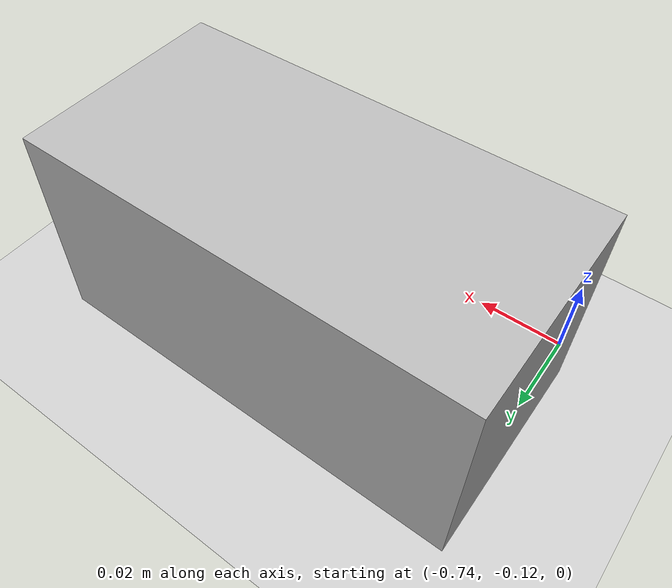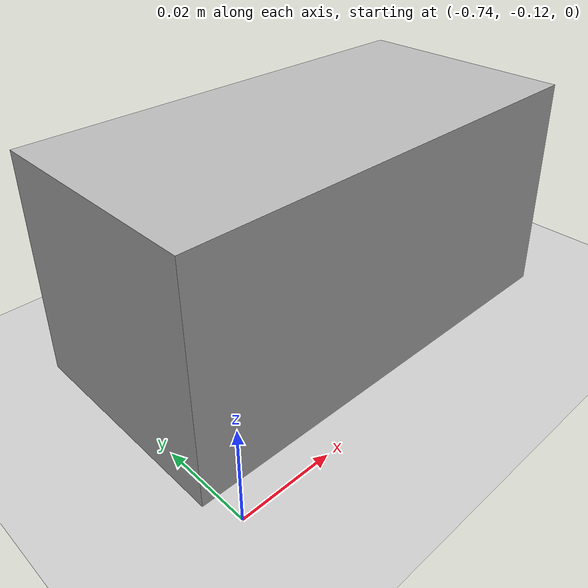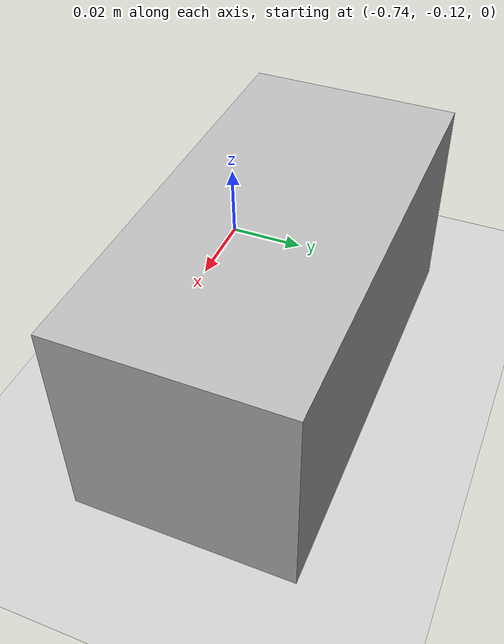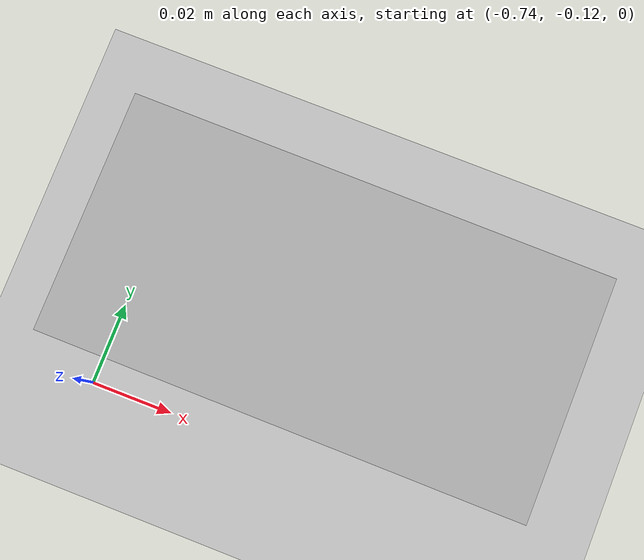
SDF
<sdf version="1.6">
 <world name="default">
  <physics name="default_physics" default="0" type="ode">
   <ode>
    <solver>
     <type>quick</type>
     <iters>20</iters>
     <sor>1</sor>
     <use_dynamic_moi_rescaling>0</use_dynamic_moi_rescaling>
    </solver>
    <constraints>
     <cfm>0</cfm>
     <erp>0.2</erp>
     <contact_max_correcting_vel>100</contact_max_correcting_vel>
     <contact_surface_layer>0</contact_surface_layer>
    </constraints>
   </ode>
   <real_time_update_rate>1000</real_time_update_rate>
   <max_step_size>0.001</max_step_size>
   <real_time_factor>1</real_time_factor>
  </physics>
  <light name="light1" type="directional">
   <pose>-2 0 4 0 -0 0</pose>
   <diffuse>1 1 1 1</diffuse>
   <specular>0.1 0.1 0.1 1</specular>
   <attenuation>
    <range>20</range>
    <constant>0.9</constant>
    <linear>0.01</linear>
    <quadratic>0.001</quadratic>
   </attenuation>
   <direction>0.2 0 -1</direction>
  </light>
  <model name="ground_plane">
   <static>1</static>
   <link name="link">
    <collision name="collision">
     <geometry><plane><normal>0 0 1</normal><size>100 100</size></plane></geometry>
     <surface>
      <contact><collide_bitmask>65535</collide_bitmask></contact>
      <friction><ode><mu>100</mu><mu2>50</mu2></ode></friction>
     </surface>
    </collision>
    <visual name="visual">
     <cast_shadows>0</cast_shadows>
     <geometry><plane><normal>0 0 1</normal><size>100 100</size></plane></geometry>
     <material>
      <script><uri>file://media/materials/scripts/gazebo.material</uri><name>Gazebo/Grey</name></script>
     </material>
    </visual>
   </link>
  </model>
  <model name="aruco_cube">
   <static>0</static>
   <link name="link">
    <inertial>
     <mass>0.05</mass>
     <inertia>
      <ixx>5.2083e-05</ixx>
      <ixy>0</ixy>
      <ixz>0</ixz>
      <iyy>5.2083e-05</iyy>
      <iyz>0</iyz>
      <izz>2.0833e-05</izz>
     </inertia>
    </inertial>
    <collision name="colision">
     <geometry><box><size>0.05 0.05 0.1</size></box></geometry>
     <surface>
      <friction><ode><mu>30</mu><mu2>30</mu2><fdir1>0 0 0</fdir1></ode></friction>
      <contact><ode><kp>1e+06</kp><kd>100</kd><min_depth>0.0025</min_depth><max_vel>1</max_vel></ode></contact>
     </surface>
    </collision>
    <visual name="visual1">
     <geometry><mesh><uri>model://aruco_cube/meshes/aruco_cube_5cm.dae</uri><scale>1 1 2</scale></mesh></geometry>
    </visual>
    <velocity_decay><linear>0</linear><angular>0</angular></velocity_decay>
   </link>
   <pose>-0.693033 -0.088278 0.024548 1.57048 0.003884 1.56653</pose>
  </model>
  <gravity>0 0 -9.81</gravity>
  <magnetic_field>6e-06 2.3e-05 -4.2e-05</magnetic_field>
  <atmosphere type="adiabatic"/>
  <scene><ambient>0.4 0.4 0.4 1</ambient><background>0.7 0.7 0.7 1</background><shadows>1</shadows></scene>
  <audio><device>default</device></audio>
  <spherical_coordinates>
   <surface_model>EARTH_WGS84</surface_model>
   <latitude_deg>0</latitude_deg>
   <longitude_deg>0</longitude_deg>
   <elevation>0</elevation>
   <heading_deg>0</heading_deg>
  </spherical_coordinates>
 </world>
</sdf>
